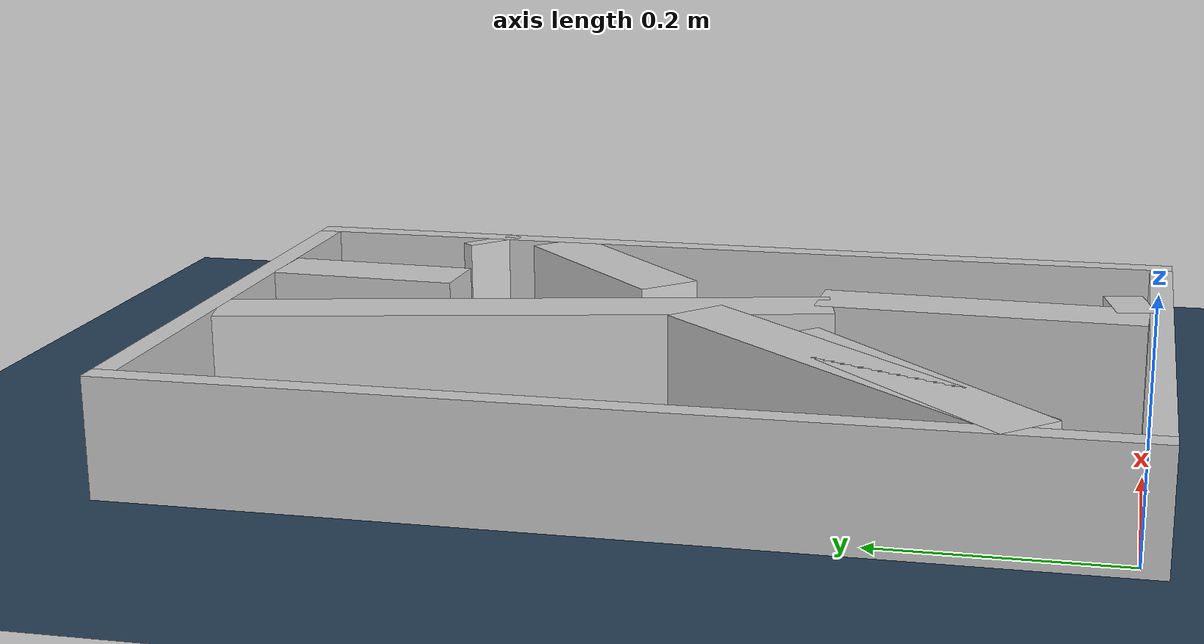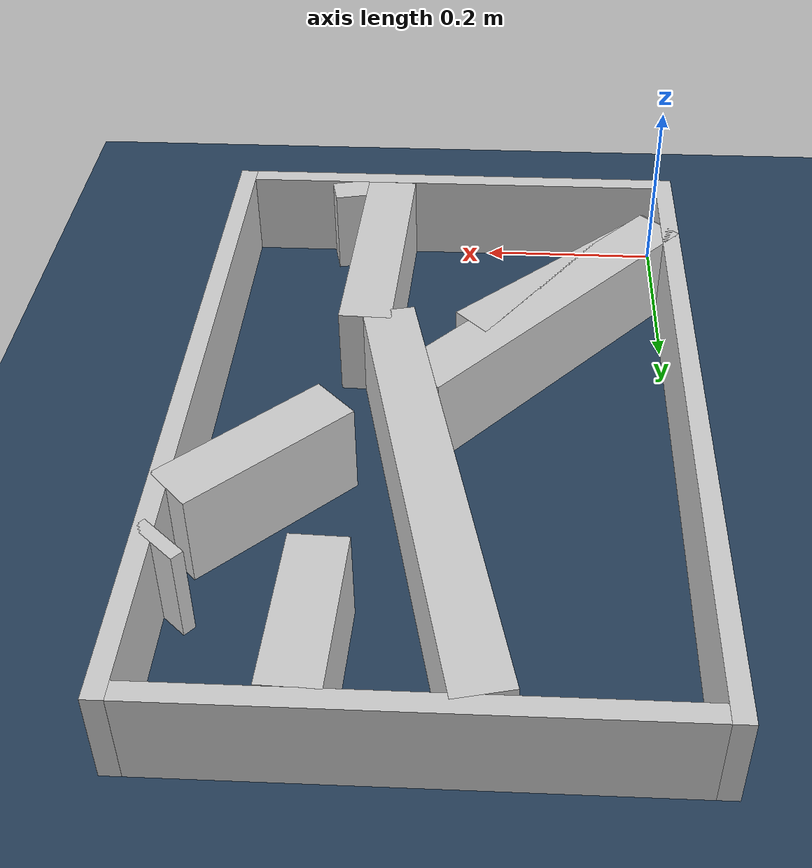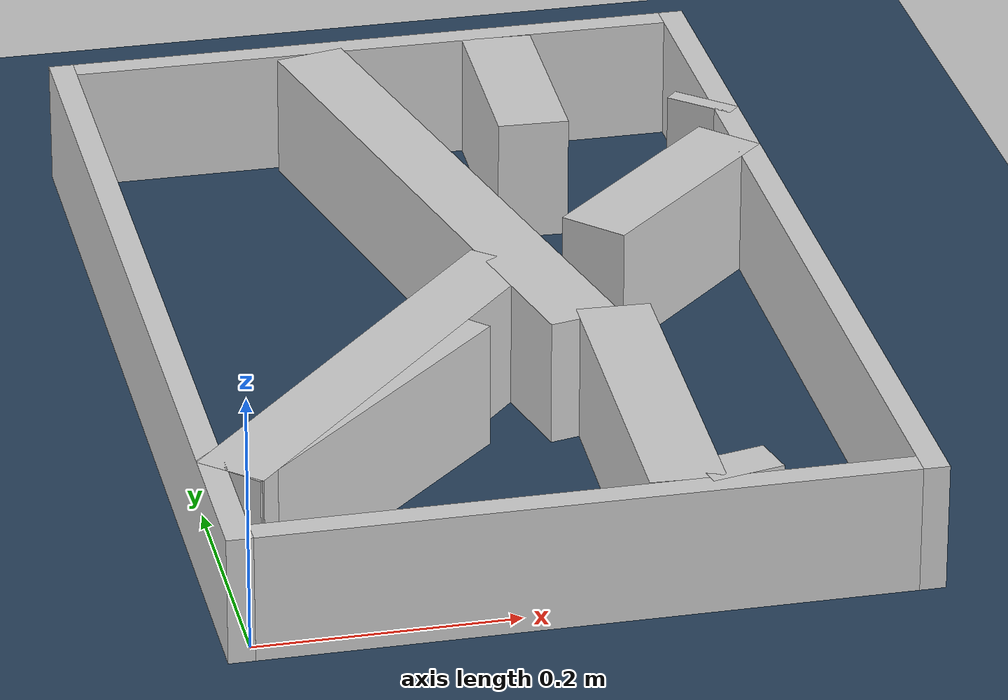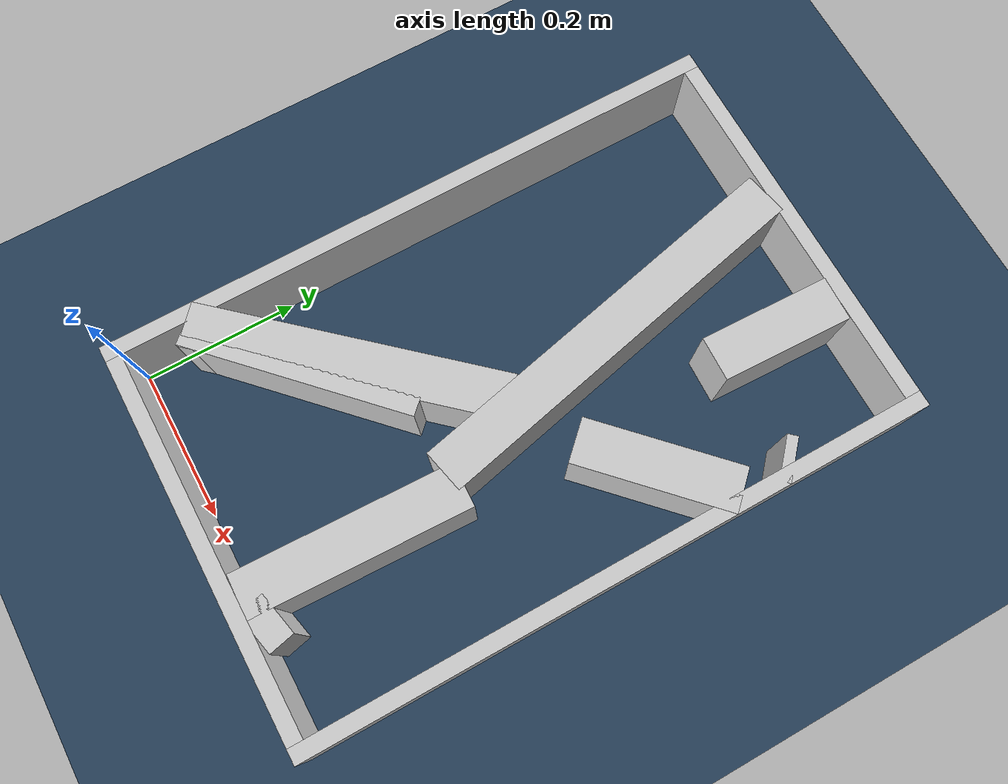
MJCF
<?xml version="1.0" ?>
<mujoco model="generated_real_template">
  <compiler angle="degree"/>
  <option timestep="0.002" integrator="implicitfast" iterations="100" cone="elliptic"/>
  <default>
    <geom density="1"/>
  </default>
  <asset>
    <texture builtin="gradient" height="3072" rgb1="0.3 0.5 0.7" rgb2="0 0 0" type="skybox" width="512"/>
    <texture builtin="checker" height="300" mark="edge" markrgb="0.8 0.8 0.8" name="groundplane" rgb1="0.2 0.3 0.4" rgb2="0.1 0.2 0.3" type="2d" width="300"/>
    <material name="groundplane" reflectance="0.2" texrepeat="5 5" texture="groundplane" texuniform="true"/>
  </asset>
  <worldbody>
    <light dir="0 0 -1" directional="true" pos="0 0 1.5"/>
    <geom name="floor" type="plane" condim="4" friction="0.5 0.005 0.001" material="groundplane" size="0 0 0.05"/>
    <body name="walls">
      <geom name="wall_boundary_left" type="box" condim="4" friction="1.0 0.005 0.0001" rgba="0.8 0.8 0.8 1" pos="-0.010000 0.387500 0.050000" euler="0 0 0.000000" size="0.010000 0.407500 0.050000"/>
      <geom name="wall_boundary_right" type="box" condim="4" friction="1.0 0.005 0.0001" rgba="0.8 0.8 0.8 1" pos="0.500000 0.387500 0.050000" euler="0 0 0.000000" size="0.010000 0.407500 0.050000"/>
      <geom name="wall_boundary_bottom" type="box" condim="4" friction="1.0 0.005 0.0001" rgba="0.8 0.8 0.8 1" pos="0.245000 -0.010000 0.050000" euler="0 0 0.000000" size="0.245000 0.010000 0.050000"/>
      <geom name="wall_boundary_top" type="box" condim="4" friction="1.0 0.005 0.0001" rgba="0.8 0.8 0.8 1" pos="0.245000 0.785000 0.050000" euler="0 0 0.000000" size="0.245000 0.010000 0.050000"/>
      <geom name="wall_inner_1_1" type="box" condim="4" friction="1.0 0.005 0.0001" rgba="0.8 0.8 0.8 1" pos="0.418415 0.484322 0.050000" euler="0 0 -136.083319" size="0.099376 0.028500 0.050000"/>
      <geom name="wall_inner_1_2" type="box" condim="4" friction="1.0 0.005 0.0001" rgba="0.8 0.8 0.8 1" pos="0.106615 0.184095 0.050000" euler="0 0 -136.083319" size="0.148004 0.028500 0.050000"/>
      <geom name="wall_inner_2_1" type="box" condim="4" friction="1.0 0.005 0.0001" rgba="0.8 0.8 0.8 1" pos="0.249077 0.519974 0.050000" euler="0 0 -77.359541" size="0.261361 0.028500 0.050000"/>
      <geom name="wall_inner_2_2" type="box" condim="4" friction="1.0 0.005 0.0001" rgba="0.8 0.8 0.8 1" pos="0.361972 0.016584 0.050000" euler="0 0 -77.359541" size="0.016995 0.028500 0.050000"/>
      <geom name="wall_inner_3_1" type="box" condim="4" friction="1.0 0.005 0.0001" rgba="0.8 0.8 0.8 1" pos="0.484220 0.618010 0.050000" euler="0 0 -131.945823" size="0.006854 0.028500 0.050000"/>
      <geom name="wall_inner_3_2" type="box" condim="4" friction="1.0 0.005 0.0001" rgba="0.8 0.8 0.8 1" pos="0.134200 0.228533 0.050000" euler="0 0 -131.945823" size="0.198976 0.028500 0.050000"/>
      <geom name="wall_inner_4_1" type="box" condim="4" friction="1.0 0.005 0.0001" rgba="0.8 0.8 0.8 1" pos="0.325684 0.139545 0.050000" euler="0 0 87.982182" size="0.139632 0.028500 0.050000"/>
      <geom name="wall_inner_4_2" type="box" condim="4" friction="1.0 0.005 0.0001" rgba="0.8 0.8 0.8 1" pos="0.345107 0.690843 0.050000" euler="0 0 87.982182" size="0.084209 0.028500 0.050000"/>
    </body>
  </worldbody>
</mujoco>
